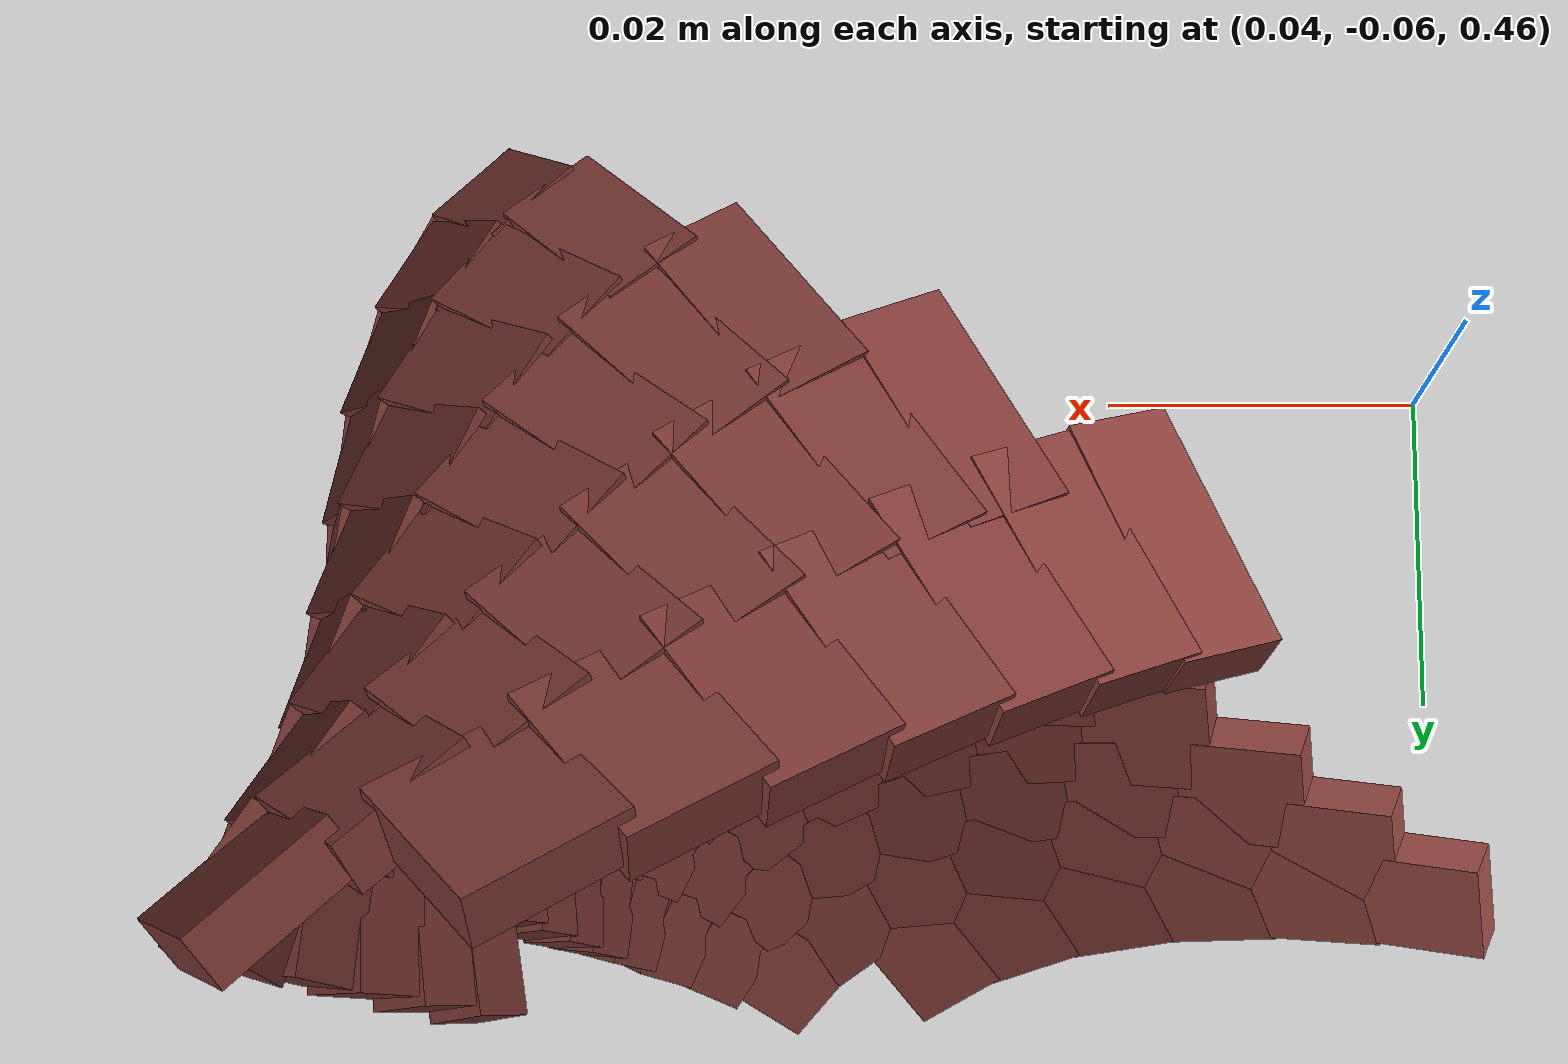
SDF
<sdf version="1.8">
 <model name="tissue">
  <static>true</static>
  <link name="t2">
   <pose>0.08698 -0.02447 0.53863 -0.6133 0.3621 -2.5926</pose>
   <visual name="v">
    <geometry><box><size>0.00718 0.00747 0.0025</size></box></geometry>
    <material>
     <ambient>0.249 0.113 0.105 1</ambient>
     <diffuse>0.452 0.205 0.191 1</diffuse>
     <specular>0.10 0.07 0.07 1</specular>
    </material>
   </visual>
  </link>
  <link name="t3">
   <pose>0.08206 -0.02740 0.53644 -0.4828 0.3674 -2.6194</pose>
   <visual name="v">
    <geometry><box><size>0.00656 0.00845 0.0025</size></box></geometry>
    <material>
     <ambient>0.259 0.119 0.110 1</ambient>
     <diffuse>0.471 0.216 0.201 1</diffuse>
     <specular>0.10 0.07 0.07 1</specular>
    </material>
   </visual>
  </link>
  <link name="t4">
   <pose>0.07749 -0.02994 0.53442 -0.3891 0.3728 -2.6481</pose>
   <visual name="v">
    <geometry><box><size>0.00601 0.00937 0.0025</size></box></geometry>
    <material>
     <ambient>0.269 0.124 0.116 1</ambient>
     <diffuse>0.489 0.226 0.210 1</diffuse>
     <specular>0.10 0.07 0.07 1</specular>
    </material>
   </visual>
  </link>
  <link name="t5">
   <pose>0.07324 -0.03214 0.53253 -0.3256 0.3789 -2.6826</pose>
   <visual name="v">
    <geometry><box><size>0.00554 0.01017 0.0025</size></box></geometry>
    <material>
     <ambient>0.278 0.129 0.120 1</ambient>
     <diffuse>0.506 0.235 0.219 1</diffuse>
     <specular>0.10 0.07 0.07 1</specular>
    </material>
   </visual>
  </link>
  <link name="t6">
   <pose>0.06923 -0.03402 0.53075 -0.2872 0.3860 -2.7264</pose>
   <visual name="v">
    <geometry><box><size>0.00515 0.01083 0.0025</size></box></geometry>
    <material>
     <ambient>0.287 0.134 0.125 1</ambient>
     <diffuse>0.521 0.244 0.227 1</diffuse>
     <specular>0.10 0.07 0.07 1</specular>
    </material>
   </visual>
  </link>
  <link name="t7">
   <pose>0.06542 -0.03558 0.52906 -0.2705 0.3940 -2.7824</pose>
   <visual name="v">
    <geometry><box><size>0.00484 0.01132 0.0025</size></box></geometry>
    <material>
     <ambient>0.295 0.139 0.129 1</ambient>
     <diffuse>0.536 0.253 0.235 1</diffuse>
     <specular>0.10 0.07 0.07 1</specular>
    </material>
   </visual>
  </link>
  <link name="t8">
   <pose>0.06175 -0.03682 0.52742 -0.2732 0.4024 -2.8518</pose>
   <visual name="v">
    <geometry><box><size>0.00460 0.01162 0.0025</size></box></geometry>
    <material>
     <ambient>0.303 0.143 0.134 1</ambient>
     <diffuse>0.551 0.261 0.243 1</diffuse>
     <specular>0.10 0.07 0.07 1</specular>
    </material>
   </visual>
  </link>
  <link name="t23">
   <pose>0.09623 -0.02202 0.53761 -1.0472 0.2717 -2.3644</pose>
   <visual name="v">
    <geometry><box><size>0.00680 0.00555 0.0025</size></box></geometry>
    <material>
     <ambient>0.229 0.101 0.094 1</ambient>
     <diffuse>0.416 0.185 0.171 1</diffuse>
     <specular>0.10 0.07 0.07 1</specular>
    </material>
   </visual>
  </link>
  <link name="t24">
   <pose>0.09217 -0.02593 0.53602 -0.7890 0.2773 -2.3865</pose>
   <visual name="v">
    <geometry><box><size>0.00633 0.00608 0.0025</size></box></geometry>
    <material>
     <ambient>0.238 0.106 0.099 1</ambient>
     <diffuse>0.432 0.193 0.180 1</diffuse>
     <specular>0.10 0.07 0.07 1</specular>
    </material>
   </visual>
  </link>
  <link name="t25">
   <pose>0.08831 -0.02948 0.53452 -0.5877 0.2830 -2.4098</pose>
   <visual name="v">
    <geometry><box><size>0.00590 0.00696 0.0025</size></box></geometry>
    <material>
     <ambient>0.246 0.111 0.103 1</ambient>
     <diffuse>0.447 0.202 0.188 1</diffuse>
     <specular>0.10 0.07 0.07 1</specular>
    </material>
   </visual>
  </link>
  <link name="t26">
   <pose>0.08463 -0.03270 0.53308 -0.4451 0.2902 -2.4402</pose>
   <visual name="v">
    <geometry><box><size>0.00552 0.00798 0.0025</size></box></geometry>
    <material>
     <ambient>0.254 0.116 0.107 1</ambient>
     <diffuse>0.461 0.210 0.195 1</diffuse>
     <specular>0.10 0.07 0.07 1</specular>
    </material>
   </visual>
  </link>
  <link name="t27">
   <pose>0.08108 -0.03558 0.53169 -0.3513 0.2999 -2.4833</pose>
   <visual name="v">
    <geometry><box><size>0.00520 0.00898 0.0025</size></box></geometry>
    <material>
     <ambient>0.261 0.120 0.112 1</ambient>
     <diffuse>0.475 0.218 0.203 1</diffuse>
     <specular>0.10 0.07 0.07 1</specular>
    </material>
   </visual>
  </link>
  <link name="t28">
   <pose>0.07759 -0.03812 0.53033 -0.2966 0.3126 -2.5442</pose>
   <visual name="v">
    <geometry><box><size>0.00495 0.00989 0.0025</size></box></geometry>
    <material>
     <ambient>0.269 0.124 0.116 1</ambient>
     <diffuse>0.489 0.226 0.210 1</diffuse>
     <specular>0.10 0.07 0.07 1</specular>
    </material>
   </visual>
  </link>
  <link name="t29">
   <pose>0.07411 -0.04030 0.52897 -0.2745 0.3278 -2.6261</pose>
   <visual name="v">
    <geometry><box><size>0.00476 0.01064 0.0025</size></box></geometry>
    <material>
     <ambient>0.276 0.128 0.119 1</ambient>
     <diffuse>0.502 0.233 0.217 1</diffuse>
     <specular>0.10 0.07 0.07 1</specular>
    </material>
   </visual>
  </link>
  <link name="t30">
   <pose>0.07057 -0.04209 0.52758 -0.2809 0.3439 -2.7295</pose>
   <visual name="v">
    <geometry><box><size>0.00465 0.01117 0.0025</size></box></geometry>
    <material>
     <ambient>0.284 0.133 0.124 1</ambient>
     <diffuse>0.516 0.241 0.225 1</diffuse>
     <specular>0.10 0.07 0.07 1</specular>
    </material>
   </visual>
  </link>
  <link name="t45">
   <pose>0.09809 -0.02245 0.53311 -1.3784 0.1748 -2.1212</pose>
   <visual name="v">
    <geometry><box><size>0.00603 0.00558 0.0025</size></box></geometry>
    <material>
     <ambient>0.225 0.099 0.092 1</ambient>
     <diffuse>0.409 0.180 0.167 1</diffuse>
     <specular>0.10 0.07 0.07 1</specular>
    </material>
   </visual>
  </link>
  <link name="t46">
   <pose>0.09537 -0.02683 0.53220 -1.0879 0.1773 -2.1305</pose>
   <visual name="v">
    <geometry><box><size>0.00572 0.00550 0.0025</size></box></geometry>
    <material>
     <ambient>0.231 0.103 0.095 1</ambient>
     <diffuse>0.420 0.186 0.173 1</diffuse>
     <specular>0.10 0.07 0.07 1</specular>
    </material>
   </visual>
  </link>
  <link name="t47">
   <pose>0.09274 -0.03096 0.53131 -0.8201 0.1818 -2.1466</pose>
   <visual name="v">
    <geometry><box><size>0.00543 0.00590 0.0025</size></box></geometry>
    <material>
     <ambient>0.236 0.106 0.098 1</ambient>
     <diffuse>0.430 0.192 0.179 1</diffuse>
     <specular>0.10 0.07 0.07 1</specular>
    </material>
   </visual>
  </link>
  <link name="t48">
   <pose>0.09016 -0.03483 0.53044 -0.6113 0.1902 -2.1775</pose>
   <visual name="v">
    <geometry><box><size>0.00518 0.00664 0.0025</size></box></geometry>
    <material>
     <ambient>0.242 0.109 0.101 1</ambient>
     <diffuse>0.440 0.198 0.184 1</diffuse>
     <specular>0.10 0.07 0.07 1</specular>
    </material>
   </visual>
  </link>
  <link name="t49">
   <pose>0.08754 -0.03842 0.52955 -0.4664 0.2042 -2.2311</pose>
   <visual name="v">
    <geometry><box><size>0.00496 0.00754 0.0025</size></box></geometry>
    <material>
     <ambient>0.248 0.112 0.104 1</ambient>
     <diffuse>0.450 0.204 0.189 1</diffuse>
     <specular>0.10 0.07 0.07 1</specular>
    </material>
   </visual>
  </link>
  <link name="t50">
   <pose>0.08481 -0.04167 0.52863 -0.3769 0.2247 -2.3144</pose>
   <visual name="v">
    <geometry><box><size>0.00479 0.00845 0.0025</size></box></geometry>
    <material>
     <ambient>0.253 0.115 0.107 1</ambient>
     <diffuse>0.461 0.210 0.195 1</diffuse>
     <specular>0.10 0.07 0.07 1</specular>
    </material>
   </visual>
  </link>
  <link name="t51">
   <pose>0.08188 -0.04453 0.52764 -0.3351 0.2507 -2.4320</pose>
   <visual name="v">
    <geometry><box><size>0.00467 0.00926 0.0025</size></box></geometry>
    <material>
     <ambient>0.260 0.119 0.111 1</ambient>
     <diffuse>0.472 0.216 0.201 1</diffuse>
     <specular>0.10 0.07 0.07 1</specular>
    </material>
   </visual>
  </link>
  <link name="t52">
   <pose>0.07867 -0.04692 0.52656 -0.3365 0.2788 -2.5831</pose>
   <visual name="v">
    <geometry><box><size>0.00464 0.00988 0.0025</size></box></geometry>
    <material>
     <ambient>0.267 0.123 0.114 1</ambient>
     <diffuse>0.485 0.223 0.208 1</diffuse>
     <specular>0.10 0.07 0.07 1</specular>
    </material>
   </visual>
  </link>
  <link name="t67">
   <pose>0.09832 -0.02250 0.52796 1.5002 0.0857 -1.8778</pose>
   <visual name="v">
    <geometry><box><size>0.00568 0.00599 0.0025</size></box></geometry>
    <material>
     <ambient>0.224 0.099 0.092 1</ambient>
     <diffuse>0.408 0.180 0.167 1</diffuse>
     <specular>0.10 0.07 0.07 1</specular>
    </material>
   </visual>
  </link>
  <link name="t68">
   <pose>0.09683 -0.02725 0.52753 -1.4136 0.0845 -1.8732</pose>
   <visual name="v">
    <geometry><box><size>0.00550 0.00560 0.0025</size></box></geometry>
    <material>
     <ambient>0.228 0.101 0.094 1</ambient>
     <diffuse>0.414 0.183 0.170 1</diffuse>
     <specular>0.10 0.07 0.07 1</specular>
    </material>
   </visual>
  </link>
  <link name="t69">
   <pose>0.09539 -0.03185 0.52712 -1.1661 0.0869 -1.8821</pose>
   <visual name="v">
    <geometry><box><size>0.00534 0.00554 0.0025</size></box></geometry>
    <material>
     <ambient>0.231 0.103 0.095 1</ambient>
     <diffuse>0.419 0.186 0.173 1</diffuse>
     <specular>0.10 0.07 0.07 1</specular>
    </material>
   </visual>
  </link>
  <link name="t70">
   <pose>0.09390 -0.03628 0.52670 -0.9328 0.0952 -1.9134</pose>
   <visual name="v">
    <geometry><box><size>0.00517 0.00581 0.0025</size></box></geometry>
    <material>
     <ambient>0.234 0.104 0.097 1</ambient>
     <diffuse>0.425 0.190 0.176 1</diffuse>
     <specular>0.10 0.07 0.07 1</specular>
    </material>
   </visual>
  </link>
  <link name="t71">
   <pose>0.09227 -0.04049 0.52624 -0.7403 0.1117 -1.9765</pose>
   <visual name="v">
    <geometry><box><size>0.00500 0.00632 0.0025</size></box></geometry>
    <material>
     <ambient>0.237 0.106 0.099 1</ambient>
     <diffuse>0.432 0.193 0.180 1</diffuse>
     <specular>0.10 0.07 0.07 1</specular>
    </material>
   </visual>
  </link>
  <link name="t72">
   <pose>0.09037 -0.04440 0.52570 -0.6000 0.1381 -2.0814</pose>
   <visual name="v">
    <geometry><box><size>0.00482 0.00694 0.0025</size></box></geometry>
    <material>
     <ambient>0.241 0.109 0.101 1</ambient>
     <diffuse>0.439 0.197 0.183 1</diffuse>
     <specular>0.10 0.07 0.07 1</specular>
    </material>
   </visual>
  </link>
  <link name="t73">
   <pose>0.08807 -0.04790 0.52504 -0.5170 0.1738 -2.2365</pose>
   <visual name="v">
    <geometry><box><size>0.00468 0.00754 0.0025</size></box></geometry>
    <material>
     <ambient>0.246 0.111 0.104 1</ambient>
     <diffuse>0.448 0.203 0.188 1</diffuse>
     <specular>0.10 0.07 0.07 1</specular>
    </material>
   </visual>
  </link>
  <link name="t74">
   <pose>0.08526 -0.05084 0.52424 -0.4964 0.2142 -2.4421</pose>
   <visual name="v">
    <geometry><box><size>0.00466 0.00799 0.0025</size></box></geometry>
    <material>
     <ambient>0.252 0.115 0.107 1</ambient>
     <diffuse>0.459 0.209 0.194 1</diffuse>
     <specular>0.10 0.07 0.07 1</specular>
    </material>
   </visual>
  </link>
  <link name="t89">
   <pose>0.09749 -0.02231 0.52253 1.3593 0.0250 -1.6792</pose>
   <visual name="v">
    <geometry><box><size>0.00563 0.00625 0.0025</size></box></geometry>
    <material>
     <ambient>0.226 0.100 0.093 1</ambient>
     <diffuse>0.411 0.182 0.169 1</diffuse>
     <specular>0.10 0.07 0.07 1</specular>
    </material>
   </visual>
  </link>
  <link name="t90">
   <pose>0.09699 -0.02729 0.52241 1.5105 0.0221 -1.6668</pose>
   <visual name="v">
    <geometry><box><size>0.00558 0.00587 0.0025</size></box></geometry>
    <material>
     <ambient>0.227 0.101 0.093 1</ambient>
     <diffuse>0.413 0.183 0.170 1</diffuse>
     <specular>0.10 0.07 0.07 1</specular>
    </material>
   </visual>
  </link>
  <link name="t91">
   <pose>0.09652 -0.03222 0.52230 -1.4639 0.0237 -1.6734</pose>
   <visual name="v">
    <geometry><box><size>0.00552 0.00565 0.0025</size></box></geometry>
    <material>
     <ambient>0.228 0.101 0.094 1</ambient>
     <diffuse>0.415 0.184 0.171 1</diffuse>
     <specular>0.10 0.07 0.07 1</specular>
    </material>
   </visual>
  </link>
  <link name="t92">
   <pose>0.09595 -0.03707 0.52217 -1.2919 0.0315 -1.7075</pose>
   <visual name="v">
    <geometry><box><size>0.00541 0.00560 0.0025</size></box></geometry>
    <material>
     <ambient>0.229 0.102 0.095 1</ambient>
     <diffuse>0.417 0.185 0.172 1</diffuse>
     <specular>0.10 0.07 0.07 1</specular>
    </material>
   </visual>
  </link>
  <link name="t93">
   <pose>0.09516 -0.04176 0.52199 -1.1270 0.0479 -1.7796</pose>
   <visual name="v">
    <geometry><box><size>0.00524 0.00571 0.0025</size></box></geometry>
    <material>
     <ambient>0.231 0.103 0.095 1</ambient>
     <diffuse>0.420 0.187 0.174 1</diffuse>
     <specular>0.10 0.07 0.07 1</specular>
    </material>
   </visual>
  </link>
  <link name="t94">
   <pose>0.09397 -0.04617 0.52172 -0.9827 0.0751 -1.9026</pose>
   <visual name="v">
    <geometry><box><size>0.00501 0.00590 0.0025</size></box></geometry>
    <material>
     <ambient>0.234 0.104 0.097 1</ambient>
     <diffuse>0.425 0.189 0.176 1</diffuse>
     <specular>0.10 0.07 0.07 1</specular>
    </material>
   </visual>
  </link>
  <link name="t95">
   <pose>0.09221 -0.05015 0.52131 -0.8775 0.1144 -2.0910</pose>
   <visual name="v">
    <geometry><box><size>0.00479 0.00609 0.0025</size></box></geometry>
    <material>
     <ambient>0.238 0.106 0.099 1</ambient>
     <diffuse>0.432 0.193 0.180 1</diffuse>
     <specular>0.10 0.07 0.07 1</specular>
    </material>
   </visual>
  </link>
  <link name="t96">
   <pose>0.08971 -0.05350 0.52073 -0.8380 0.1608 -2.3487</pose>
   <visual name="v">
    <geometry><box><size>0.00472 0.00619 0.0025</size></box></geometry>
    <material>
     <ambient>0.243 0.109 0.102 1</ambient>
     <diffuse>0.442 0.199 0.185 1</diffuse>
     <specular>0.10 0.07 0.07 1</specular>
    </material>
   </visual>
  </link>
  <link name="t111">
   <pose>0.09614 -0.02200 0.51710 1.3062 -0.0051 -1.5418</pose>
   <visual name="v">
    <geometry><box><size>0.00569 0.00626 0.0025</size></box></geometry>
    <material>
     <ambient>0.229 0.102 0.094 1</ambient>
     <diffuse>0.417 0.185 0.171 1</diffuse>
     <specular>0.10 0.07 0.07 1</specular>
    </material>
   </visual>
  </link>
  <link name="t112">
   <pose>0.09633 -0.02710 0.51713 1.4016 -0.0075 -1.5288</pose>
   <visual name="v">
    <geometry><box><size>0.00574 0.00602 0.0025</size></box></geometry>
    <material>
     <ambient>0.229 0.101 0.094 1</ambient>
     <diffuse>0.416 0.184 0.171 1</diffuse>
     <specular>0.10 0.07 0.07 1</specular>
    </material>
   </visual>
  </link>
  <link name="t113">
   <pose>0.09654 -0.03223 0.51717 1.4984 -0.0057 -1.5390</pose>
   <visual name="v">
    <geometry><box><size>0.00574 0.00585 0.0025</size></box></geometry>
    <material>
     <ambient>0.228 0.101 0.094 1</ambient>
     <diffuse>0.415 0.184 0.171 1</diffuse>
     <specular>0.10 0.07 0.07 1</specular>
    </material>
   </visual>
  </link>
  <link name="t114">
   <pose>0.09661 -0.03733 0.51718 -1.5504 0.0017 -1.5805</pose>
   <visual name="v">
    <geometry><box><size>0.00566 0.00574 0.0025</size></box></geometry>
    <material>
     <ambient>0.228 0.101 0.094 1</ambient>
     <diffuse>0.415 0.184 0.171 1</diffuse>
     <specular>0.10 0.07 0.07 1</specular>
    </material>
   </visual>
  </link>
  <link name="t115">
   <pose>0.09639 -0.04230 0.51714 -1.4667 0.0166 -1.6644</pose>
   <visual name="v">
    <geometry><box><size>0.00546 0.00567 0.0025</size></box></geometry>
    <material>
     <ambient>0.229 0.101 0.094 1</ambient>
     <diffuse>0.416 0.184 0.171 1</diffuse>
     <specular>0.10 0.07 0.07 1</specular>
    </material>
   </visual>
  </link>
  <link name="t116">
   <pose>0.09565 -0.04700 0.51701 -1.3982 0.0416 -1.8073</pose>
   <visual name="v">
    <geometry><box><size>0.00517 0.00562 0.0025</size></box></geometry>
    <material>
     <ambient>0.230 0.102 0.095 1</ambient>
     <diffuse>0.418 0.186 0.173 1</diffuse>
     <specular>0.10 0.07 0.07 1</specular>
    </material>
   </visual>
  </link>
  <link name="t117">
   <pose>0.09417 -0.05122 0.51675 -1.3575 0.0785 -2.0291</pose>
   <visual name="v">
    <geometry><box><size>0.00488 0.00554 0.0025</size></box></geometry>
    <material>
     <ambient>0.233 0.104 0.097 1</ambient>
     <diffuse>0.424 0.189 0.176 1</diffuse>
     <specular>0.10 0.07 0.07 1</specular>
    </material>
   </visual>
  </link>
  <link name="t118">
   <pose>0.09176 -0.05472 0.51632 -1.3649 0.1224 -2.3350</pose>
   <visual name="v">
    <geometry><box><size>0.00478 0.00540 0.0025</size></box></geometry>
    <material>
     <ambient>0.238 0.107 0.099 1</ambient>
     <diffuse>0.434 0.194 0.181 1</diffuse>
     <specular>0.10 0.07 0.07 1</specular>
    </material>
   </visual>
  </link>
  <link name="t133">
   <pose>0.09464 -0.02166 0.51179 1.3066 -0.0138 -1.4594</pose>
   <visual name="v">
    <geometry><box><size>0.00575 0.00608 0.0025</size></box></geometry>
    <material>
     <ambient>0.232 0.103 0.096 1</ambient>
     <diffuse>0.422 0.188 0.175 1</diffuse>
     <specular>0.10 0.07 0.07 1</specular>
    </material>
   </visual>
  </link>
  <link name="t134">
   <pose>0.09525 -0.02680 0.51187 1.3594 -0.0148 -1.4516</pose>
   <visual name="v">
    <geometry><box><size>0.00584 0.00600 0.0025</size></box></geometry>
    <material>
     <ambient>0.231 0.103 0.095 1</ambient>
     <diffuse>0.420 0.187 0.173 1</diffuse>
     <specular>0.10 0.07 0.07 1</specular>
    </material>
   </visual>
  </link>
  <link name="t135">
   <pose>0.09584 -0.03200 0.51194 1.4028 -0.0125 -1.4705</pose>
   <visual name="v">
    <geometry><box><size>0.00586 0.00594 0.0025</size></box></geometry>
    <material>
     <ambient>0.230 0.102 0.095 1</ambient>
     <diffuse>0.418 0.185 0.172 1</diffuse>
     <specular>0.10 0.07 0.07 1</specular>
    </material>
   </visual>
  </link>
  <link name="t136">
   <pose>0.09625 -0.03719 0.51199 1.4314 -0.0057 -1.5247</pose>
   <visual name="v">
    <geometry><box><size>0.00577 0.00591 0.0025</size></box></geometry>
    <material>
     <ambient>0.229 0.101 0.094 1</ambient>
     <diffuse>0.416 0.184 0.171 1</diffuse>
     <specular>0.10 0.07 0.07 1</specular>
    </material>
   </visual>
  </link>
  <link name="t137">
   <pose>0.09626 -0.04225 0.51199 1.4389 0.0070 -1.6272</pose>
   <visual name="v">
    <geometry><box><size>0.00553 0.00589 0.0025</size></box></geometry>
    <material>
     <ambient>0.229 0.101 0.094 1</ambient>
     <diffuse>0.416 0.184 0.171 1</diffuse>
     <specular>0.10 0.07 0.07 1</specular>
    </material>
   </visual>
  </link>
  <link name="t138">
   <pose>0.09563 -0.04699 0.51191 1.4185 0.0281 -1.7981</pose>
   <visual name="v">
    <geometry><box><size>0.00518 0.00587 0.0025</size></box></geometry>
    <material>
     <ambient>0.230 0.102 0.095 1</ambient>
     <diffuse>0.419 0.186 0.173 1</diffuse>
     <specular>0.10 0.07 0.07 1</specular>
    </material>
   </visual>
  </link>
  <link name="t139">
   <pose>0.09412 -0.05119 0.51172 1.3658 0.0585 -2.0603</pose>
   <visual name="v">
    <geometry><box><size>0.00486 0.00585 0.0025</size></box></geometry>
    <material>
     <ambient>0.233 0.104 0.097 1</ambient>
     <diffuse>0.424 0.189 0.176 1</diffuse>
     <specular>0.10 0.07 0.07 1</specular>
    </material>
   </visual>
  </link>
  <link name="t140">
   <pose>0.09151 -0.05457 0.51140 1.2934 0.0923 -2.4087</pose>
   <visual name="v">
    <geometry><box><size>0.00485 0.00586 0.0025</size></box></geometry>
    <material>
     <ambient>0.239 0.107 0.100 1</ambient>
     <diffuse>0.435 0.195 0.181 1</diffuse>
     <specular>0.10 0.07 0.07 1</specular>
    </material>
   </visual>
  </link>
  <link name="t155">
   <pose>0.09327 -0.02135 0.50665 1.3384 -0.0107 -1.4207</pose>
   <visual name="v">
    <geometry><box><size>0.00575 0.00585 0.0025</size></box></geometry>
    <material>
     <ambient>0.235 0.105 0.098 1</ambient>
     <diffuse>0.428 0.191 0.177 1</diffuse>
     <specular>0.10 0.07 0.07 1</specular>
    </material>
   </visual>
  </link>
  <link name="t156">
   <pose>0.09406 -0.02646 0.50671 1.3540 -0.0105 -1.4227</pose>
   <visual name="v">
    <geometry><box><size>0.00584 0.00587 0.0025</size></box></geometry>
    <material>
     <ambient>0.234 0.104 0.097 1</ambient>
     <diffuse>0.425 0.189 0.176 1</diffuse>
     <specular>0.10 0.07 0.07 1</specular>
    </material>
   </visual>
  </link>
  <link name="t157">
   <pose>0.09476 -0.03164 0.50676 1.3527 -0.0082 -1.4557</pose>
   <visual name="v">
    <geometry><box><size>0.00583 0.00592 0.0025</size></box></geometry>
    <material>
     <ambient>0.232 0.103 0.096 1</ambient>
     <diffuse>0.422 0.188 0.174 1</diffuse>
     <specular>0.10 0.07 0.07 1</specular>
    </material>
   </visual>
  </link>
  <link name="t158">
   <pose>0.09520 -0.03678 0.50679 1.3280 -0.0029 -1.5295</pose>
   <visual name="v">
    <geometry><box><size>0.00569 0.00599 0.0025</size></box></geometry>
    <material>
     <ambient>0.231 0.103 0.095 1</ambient>
     <diffuse>0.420 0.187 0.173 1</diffuse>
     <specular>0.10 0.07 0.07 1</specular>
    </material>
   </visual>
  </link>
  <link name="t159">
   <pose>0.09512 -0.04174 0.50678 1.2730 0.0064 -1.6601</pose>
   <visual name="v">
    <geometry><box><size>0.00540 0.00609 0.0025</size></box></geometry>
    <material>
     <ambient>0.231 0.103 0.095 1</ambient>
     <diffuse>0.421 0.187 0.174 1</diffuse>
     <specular>0.10 0.07 0.07 1</specular>
    </material>
   </visual>
  </link>
  <link name="t160">
   <pose>0.09427 -0.04632 0.50672 1.1852 0.0211 -1.8711</pose>
   <visual name="v">
    <geometry><box><size>0.00503 0.00624 0.0025</size></box></geometry>
    <material>
     <ambient>0.233 0.104 0.096 1</ambient>
     <diffuse>0.424 0.189 0.175 1</diffuse>
     <specular>0.10 0.07 0.07 1</specular>
    </material>
   </visual>
  </link>
  <link name="t161">
   <pose>0.09241 -0.05026 0.50659 1.0811 0.0408 -2.1798</pose>
   <visual name="v">
    <geometry><box><size>0.00480 0.00646 0.0025</size></box></geometry>
    <material>
     <ambient>0.237 0.106 0.099 1</ambient>
     <diffuse>0.431 0.193 0.179 1</diffuse>
     <specular>0.10 0.07 0.07 1</specular>
    </material>
   </visual>
  </link>
  <link name="t162">
   <pose>0.08934 -0.05328 0.50637 1.0031 0.0592 -2.5520</pose>
   <visual name="v">
    <geometry><box><size>0.00499 0.00676 0.0025</size></box></geometry>
    <material>
     <ambient>0.244 0.110 0.102 1</ambient>
     <diffuse>0.443 0.200 0.186 1</diffuse>
     <specular>0.10 0.07 0.07 1</specular>
    </material>
   </visual>
  </link>
  <link name="t178">
   <pose>0.09291 -0.02614 0.50168 1.3655 -0.0025 -1.4338</pose>
   <visual name="v">
    <geometry><box><size>0.00574 0.00571 0.0025</size></box></geometry>
    <material>
     <ambient>0.236 0.106 0.098 1</ambient>
     <diffuse>0.429 0.192 0.178 1</diffuse>
     <specular>0.10 0.07 0.07 1</specular>
    </material>
   </visual>
  </link>
  <link name="t179">
   <pose>0.09350 -0.03122 0.50169 1.3226 -0.0015 -1.4872</pose>
   <visual name="v">
    <geometry><box><size>0.00567 0.00581 0.0025</size></box></geometry>
    <material>
     <ambient>0.235 0.105 0.097 1</ambient>
     <diffuse>0.427 0.191 0.177 1</diffuse>
     <specular>0.10 0.07 0.07 1</specular>
    </material>
   </visual>
  </link>
  <link name="t180">
   <pose>0.09370 -0.03620 0.50169 1.2493 0.0003 -1.5895</pose>
   <visual name="v">
    <geometry><box><size>0.00547 0.00596 0.0025</size></box></geometry>
    <material>
     <ambient>0.234 0.105 0.097 1</ambient>
     <diffuse>0.426 0.190 0.177 1</diffuse>
     <specular>0.10 0.07 0.07 1</specular>
    </material>
   </visual>
  </link>
  <link name="t181">
   <pose>0.09326 -0.04093 0.50168 1.1422 0.0034 -1.7603</pose>
   <visual name="v">
    <geometry><box><size>0.00514 0.00619 0.0025</size></box></geometry>
    <material>
     <ambient>0.235 0.105 0.098 1</ambient>
     <diffuse>0.428 0.191 0.177 1</diffuse>
     <specular>0.10 0.07 0.07 1</specular>
    </material>
   </visual>
  </link>
  <link name="t182">
   <pose>0.09191 -0.04516 0.50166 1.0146 0.0079 -2.0211</pose>
   <visual name="v">
    <geometry><box><size>0.00484 0.00651 0.0025</size></box></geometry>
    <material>
     <ambient>0.238 0.107 0.099 1</ambient>
     <diffuse>0.433 0.194 0.180 1</diffuse>
     <specular>0.10 0.07 0.07 1</specular>
    </material>
   </visual>
  </link>
  <link name="t183">
   <pose>0.08945 -0.04865 0.50161 0.9085 0.0129 -2.3664</pose>
   <visual name="v">
    <geometry><box><size>0.00482 0.00696 0.0025</size></box></geometry>
    <material>
     <ambient>0.243 0.110 0.102 1</ambient>
     <diffuse>0.443 0.199 0.185 1</diffuse>
     <specular>0.10 0.07 0.07 1</specular>
    </material>
   </visual>
  </link>
  <link name="t184">
   <pose>0.08574 -0.05113 0.50155 0.8634 0.0165 -2.7257</pose>
   <visual name="v">
    <geometry><box><size>0.00530 0.00748 0.0025</size></box></geometry>
    <material>
     <ambient>0.251 0.114 0.106 1</ambient>
     <diffuse>0.457 0.208 0.193 1</diffuse>
     <specular>0.10 0.07 0.07 1</specular>
    </material>
   </visual>
  </link>
  <link name="t200">
   <pose>0.09189 -0.02585 0.49677 1.3772 0.0032 -1.4809</pose>
   <visual name="v">
    <geometry><box><size>0.00556 0.00556 0.0025</size></box></geometry>
    <material>
     <ambient>0.238 0.107 0.099 1</ambient>
     <diffuse>0.433 0.194 0.180 1</diffuse>
     <specular>0.10 0.07 0.07 1</specular>
    </material>
   </visual>
  </link>
  <link name="t201">
   <pose>0.09216 -0.03077 0.49676 1.2938 0.0003 -1.5629</pose>
   <visual name="v">
    <geometry><box><size>0.00543 0.00568 0.0025</size></box></geometry>
    <material>
     <ambient>0.238 0.106 0.099 1</ambient>
     <diffuse>0.432 0.193 0.180 1</diffuse>
     <specular>0.10 0.07 0.07 1</specular>
    </material>
   </visual>
  </link>
  <link name="t202">
   <pose>0.09190 -0.03551 0.49676 1.1752 -0.0047 -1.7044</pose>
   <visual name="v">
    <geometry><box><size>0.00518 0.00588 0.0025</size></box></geometry>
    <material>
     <ambient>0.238 0.107 0.099 1</ambient>
     <diffuse>0.433 0.194 0.180 1</diffuse>
     <specular>0.10 0.07 0.07 1</specular>
    </material>
   </visual>
  </link>
  <link name="t203">
   <pose>0.09086 -0.03988 0.49680 1.0302 -0.0122 -1.9251</pose>
   <visual name="v">
    <geometry><box><size>0.00489 0.00620 0.0025</size></box></geometry>
    <material>
     <ambient>0.240 0.108 0.100 1</ambient>
     <diffuse>0.437 0.196 0.182 1</diffuse>
     <specular>0.10 0.07 0.07 1</specular>
    </material>
   </visual>
  </link>
  <link name="t204">
   <pose>0.08882 -0.04364 0.49687 0.8973 -0.0216 -2.2310</pose>
   <visual name="v">
    <geometry><box><size>0.00478 0.00667 0.0025</size></box></geometry>
    <material>
     <ambient>0.245 0.110 0.103 1</ambient>
     <diffuse>0.445 0.201 0.187 1</diffuse>
     <specular>0.10 0.07 0.07 1</specular>
    </material>
   </visual>
  </link>
  <link name="t205">
   <pose>0.08560 -0.04656 0.49699 0.8241 -0.0298 -2.5788</pose>
   <visual name="v">
    <geometry><box><size>0.00506 0.00725 0.0025</size></box></geometry>
    <material>
     <ambient>0.252 0.114 0.106 1</ambient>
     <diffuse>0.458 0.208 0.193 1</diffuse>
     <specular>0.10 0.07 0.07 1</specular>
    </material>
   </visual>
  </link>
  <link name="t206">
   <pose>0.08119 -0.04842 0.49714 0.8153 -0.0341 -2.8899</pose>
   <visual name="v">
    <geometry><box><size>0.00577 0.00788 0.0025</size></box></geometry>
    <material>
     <ambient>0.261 0.120 0.111 1</ambient>
     <diffuse>0.475 0.218 0.203 1</diffuse>
     <specular>0.10 0.07 0.07 1</specular>
    </material>
   </visual>
  </link>
  <link name="t222">
   <pose>0.09093 -0.02558 0.49196 1.3714 0.0007 -1.5632</pose>
   <visual name="v">
    <geometry><box><size>0.00536 0.00544 0.0025</size></box></geometry>
    <material>
     <ambient>0.240 0.108 0.100 1</ambient>
     <diffuse>0.437 0.196 0.182 1</diffuse>
     <specular>0.10 0.07 0.07 1</specular>
    </material>
   </visual>
  </link>
  <link name="t223">
   <pose>0.09072 -0.03029 0.49197 1.2493 -0.0099 -1.6830</pose>
   <visual name="v">
    <geometry><box><size>0.00517 0.00556 0.0025</size></box></geometry>
    <material>
     <ambient>0.241 0.108 0.101 1</ambient>
     <diffuse>0.438 0.197 0.183 1</diffuse>
     <specular>0.10 0.07 0.07 1</specular>
    </material>
   </visual>
  </link>
  <link name="t224">
   <pose>0.08984 -0.03471 0.49205 1.0943 -0.0263 -1.8727</pose>
   <visual name="v">
    <geometry><box><size>0.00493 0.00578 0.0025</size></box></geometry>
    <material>
     <ambient>0.243 0.109 0.102 1</ambient>
     <diffuse>0.441 0.199 0.185 1</diffuse>
     <specular>0.10 0.07 0.07 1</specular>
    </material>
   </visual>
  </link>
  <link name="t225">
   <pose>0.08805 -0.03864 0.49221 0.9385 -0.0477 -2.1410</pose>
   <visual name="v">
    <geometry><box><size>0.00480 0.00617 0.0025</size></box></geometry>
    <material>
     <ambient>0.246 0.111 0.104 1</ambient>
     <diffuse>0.448 0.203 0.188 1</diffuse>
     <specular>0.10 0.07 0.07 1</specular>
    </material>
   </visual>
  </link>
  <link name="t226">
   <pose>0.08518 -0.04186 0.49246 0.8348 -0.0687 -2.4628</pose>
   <visual name="v">
    <geometry><box><size>0.00496 0.00673 0.0025</size></box></geometry>
    <material>
     <ambient>0.253 0.115 0.107 1</ambient>
     <diffuse>0.459 0.209 0.194 1</diffuse>
     <specular>0.10 0.07 0.07 1</specular>
    </material>
   </visual>
  </link>
  <link name="t227">
   <pose>0.08117 -0.04414 0.49282 0.8023 -0.0824 -2.7734</pose>
   <visual name="v">
    <geometry><box><size>0.00551 0.00738 0.0025</size></box></geometry>
    <material>
     <ambient>0.261 0.120 0.111 1</ambient>
     <diffuse>0.475 0.218 0.203 1</diffuse>
     <specular>0.10 0.07 0.07 1</specular>
    </material>
   </visual>
  </link>
  <link name="t228">
   <pose>0.07606 -0.04536 0.49327 0.8155 -0.0876 -3.0236</pose>
   <visual name="v">
    <geometry><box><size>0.00632 0.00799 0.0025</size></box></geometry>
    <material>
     <ambient>0.272 0.126 0.117 1</ambient>
     <diffuse>0.495 0.229 0.213 1</diffuse>
     <specular>0.10 0.07 0.07 1</specular>
    </material>
   </visual>
  </link>
  <link name="t244">
   <pose>0.08992 -0.02530 0.48726 1.3284 -0.0154 -1.6799</pose>
   <visual name="v">
    <geometry><box><size>0.00516 0.00534 0.0025</size></box></geometry>
    <material>
     <ambient>0.242 0.109 0.101 1</ambient>
     <diffuse>0.441 0.198 0.184 1</diffuse>
     <specular>0.10 0.07 0.07 1</specular>
    </material>
   </visual>
  </link>
  <link name="t245">
   <pose>0.08909 -0.02974 0.48737 1.1747 -0.0384 -1.8452</pose>
   <visual name="v">
    <geometry><box><size>0.00497 0.00545 0.0025</size></box></geometry>
    <material>
     <ambient>0.244 0.110 0.102 1</ambient>
     <diffuse>0.444 0.200 0.186 1</diffuse>
     <specular>0.10 0.07 0.07 1</specular>
    </material>
   </visual>
  </link>
  <link name="t246">
   <pose>0.08746 -0.03379 0.48761 1.0062 -0.0692 -2.0816</pose>
   <visual name="v">
    <geometry><box><size>0.00485 0.00571 0.0025</size></box></geometry>
    <material>
     <ambient>0.248 0.112 0.104 1</ambient>
     <diffuse>0.450 0.204 0.190 1</diffuse>
     <specular>0.10 0.07 0.07 1</specular>
    </material>
   </visual>
  </link>
  <link name="t247">
   <pose>0.08483 -0.03723 0.48798 0.8757 -0.1016 -2.3741</pose>
   <visual name="v">
    <geometry><box><size>0.00496 0.00616 0.0025</size></box></geometry>
    <material>
     <ambient>0.253 0.115 0.107 1</ambient>
     <diffuse>0.461 0.210 0.195 1</diffuse>
     <specular>0.10 0.07 0.07 1</specular>
    </material>
   </visual>
  </link>
  <link name="t248">
   <pose>0.08111 -0.03986 0.48850 0.8166 -0.1258 -2.6729</pose>
   <visual name="v">
    <geometry><box><size>0.00539 0.00676 0.0025</size></box></geometry>
    <material>
     <ambient>0.261 0.120 0.111 1</ambient>
     <diffuse>0.475 0.218 0.203 1</diffuse>
     <specular>0.10 0.07 0.07 1</specular>
    </material>
   </visual>
  </link>
  <link name="t249">
   <pose>0.07633 -0.04151 0.48918 0.8131 -0.1376 -2.9281</pose>
   <visual name="v">
    <geometry><box><size>0.00609 0.00738 0.0025</size></box></geometry>
    <material>
     <ambient>0.272 0.126 0.117 1</ambient>
     <diffuse>0.494 0.228 0.213 1</diffuse>
     <specular>0.10 0.07 0.07 1</specular>
    </material>
   </visual>
  </link>
  <link name="t250">
   <pose>0.07065 -0.04213 0.48999 0.8348 -0.1408 -3.1245</pose>
   <visual name="v">
    <geometry><box><size>0.00683 0.00790 0.0025</size></box></geometry>
    <material>
     <ambient>0.284 0.133 0.123 1</ambient>
     <diffuse>0.516 0.241 0.224 1</diffuse>
     <specular>0.10 0.07 0.07 1</specular>
    </material>
   </visual>
  </link>
  <link name="t266">
   <pose>0.08864 -0.02494 0.48272 1.2296 -0.0493 -1.8268</pose>
   <visual name="v">
    <geometry><box><size>0.00502 0.00526 0.0025</size></box></geometry>
    <material>
     <ambient>0.245 0.111 0.103 1</ambient>
     <diffuse>0.446 0.201 0.187 1</diffuse>
     <specular>0.10 0.07 0.07 1</specular>
    </material>
   </visual>
  </link>
  <link name="t267">
   <pose>0.08711 -0.02908 0.48302 1.0647 -0.0874 -2.0370</pose>
   <visual name="v">
    <geometry><box><size>0.00492 0.00539 0.0025</size></box></geometry>
    <material>
     <ambient>0.248 0.113 0.105 1</ambient>
     <diffuse>0.452 0.205 0.190 1</diffuse>
     <specular>0.10 0.07 0.07 1</specular>
    </material>
   </visual>
  </link>
  <link name="t268">
   <pose>0.08466 -0.03271 0.48349 0.9203 -0.1295 -2.3022</pose>
   <visual name="v">
    <geometry><box><size>0.00500 0.00571 0.0025</size></box></geometry>
    <material>
     <ambient>0.254 0.116 0.107 1</ambient>
     <diffuse>0.461 0.210 0.195 1</diffuse>
     <specular>0.10 0.07 0.07 1</specular>
    </material>
   </visual>
  </link>
  <link name="t269">
   <pose>0.08118 -0.03563 0.48417 0.8396 -0.1640 -2.5847</pose>
   <visual name="v">
    <geometry><box><size>0.00536 0.00621 0.0025</size></box></geometry>
    <material>
     <ambient>0.261 0.120 0.111 1</ambient>
     <diffuse>0.475 0.218 0.203 1</diffuse>
     <specular>0.10 0.07 0.07 1</specular>
    </material>
   </visual>
  </link>
  <link name="t270">
   <pose>0.07666 -0.03767 0.48505 0.8196 -0.1840 -2.8386</pose>
   <visual name="v">
    <geometry><box><size>0.00597 0.00679 0.0025</size></box></geometry>
    <material>
     <ambient>0.271 0.125 0.117 1</ambient>
     <diffuse>0.492 0.228 0.212 1</diffuse>
     <specular>0.10 0.07 0.07 1</specular>
    </material>
   </visual>
  </link>
  <link name="t271">
   <pose>0.07123 -0.03874 0.48611 0.8322 -0.1916 -3.0421</pose>
   <visual name="v">
    <geometry><box><size>0.00665 0.00733 0.0025</size></box></geometry>
    <material>
     <ambient>0.282 0.132 0.123 1</ambient>
     <diffuse>0.514 0.240 0.223 1</diffuse>
     <specular>0.10 0.07 0.07 1</specular>
    </material>
   </visual>
  </link>
  <link name="t272">
   <pose>0.06512 -0.03884 0.48730 0.8565 -0.1923 3.0851</pose>
   <visual name="v">
    <geometry><box><size>0.00723 0.00769 0.0025</size></box></geometry>
    <material>
     <ambient>0.296 0.139 0.130 1</ambient>
     <diffuse>0.537 0.253 0.236 1</diffuse>
     <specular>0.10 0.07 0.07 1</specular>
    </material>
   </visual>
  </link>
  <link name="t288">
   <pose>0.08682 -0.02443 0.47845 1.0679 -0.1011 -1.9920</pose>
   <visual name="v">
    <geometry><box><size>0.00499 0.00523 0.0025</size></box></geometry>
    <material>
     <ambient>0.249 0.113 0.105 1</ambient>
     <diffuse>0.453 0.205 0.191 1</diffuse>
     <specular>0.10 0.07 0.07 1</specular>
    </material>
   </visual>
  </link>
  <link name="t289">
   <pose>0.08456 -0.02823 0.47901 0.9308 -0.1517 -2.2341</pose>
   <visual name="v">
    <geometry><box><size>0.00506 0.00545 0.0025</size></box></geometry>
    <material>
     <ambient>0.254 0.116 0.108 1</ambient>
     <diffuse>0.462 0.210 0.196 1</diffuse>
     <specular>0.10 0.07 0.07 1</specular>
    </material>
   </visual>
  </link>
  <link name="t290">
   <pose>0.08131 -0.03141 0.47982 0.8440 -0.1964 -2.5008</pose>
   <visual name="v">
    <geometry><box><size>0.00536 0.00584 0.0025</size></box></geometry>
    <material>
     <ambient>0.261 0.120 0.111 1</ambient>
     <diffuse>0.474 0.217 0.202 1</diffuse>
     <specular>0.10 0.07 0.07 1</specular>
    </material>
   </visual>
  </link>
  <link name="t291">
   <pose>0.07704 -0.03381 0.48088 0.8158 -0.2257 -2.7512</pose>
   <visual name="v">
    <geometry><box><size>0.00590 0.00635 0.0025</size></box></geometry>
    <material>
     <ambient>0.270 0.125 0.116 1</ambient>
     <diffuse>0.491 0.227 0.211 1</diffuse>
     <specular>0.10 0.07 0.07 1</specular>
    </material>
   </visual>
  </link>
  <link name="t292">
   <pose>0.07185 -0.03530 0.48216 0.8238 -0.2395 -2.9597</pose>
   <visual name="v">
    <geometry><box><size>0.00654 0.00686 0.0025</size></box></geometry>
    <material>
     <ambient>0.281 0.131 0.122 1</ambient>
     <diffuse>0.511 0.238 0.222 1</diffuse>
     <specular>0.10 0.07 0.07 1</specular>
    </material>
   </visual>
  </link>
  <link name="t293">
   <pose>0.06595 -0.03587 0.48363 0.8465 -0.2433 -3.1235</pose>
   <visual name="v">
    <geometry><box><size>0.00710 0.00724 0.0025</size></box></geometry>
    <material>
     <ambient>0.294 0.138 0.129 1</ambient>
     <diffuse>0.534 0.251 0.234 1</diffuse>
     <specular>0.10 0.07 0.07 1</specular>
    </material>
   </visual>
  </link>
  <link name="t294">
   <pose>0.05962 -0.03555 0.48520 0.8725 -0.2419 3.0325</pose>
   <visual name="v">
    <geometry><box><size>0.00746 0.00742 0.0025</size></box></geometry>
    <material>
     <ambient>0.307 0.146 0.136 1</ambient>
     <diffuse>0.559 0.265 0.247 1</diffuse>
     <specular>0.10 0.07 0.07 1</specular>
    </material>
   </visual>
  </link>
  <link name="t310">
   <pose>0.08419 -0.02369 0.47462 0.8644 -0.1651 -2.1561</pose>
   <visual name="v">
    <geometry><box><size>0.00507 0.00539 0.0025</size></box></geometry>
    <material>
     <ambient>0.255 0.116 0.108 1</ambient>
     <diffuse>0.463 0.211 0.196 1</diffuse>
     <specular>0.10 0.07 0.07 1</specular>
    </material>
   </visual>
  </link>
  <link name="t311">
   <pose>0.08123 -0.02712 0.47551 0.7953 -0.2207 -2.4102</pose>
   <visual name="v">
    <geometry><box><size>0.00533 0.00571 0.0025</size></box></geometry>
    <material>
     <ambient>0.261 0.120 0.111 1</ambient>
     <diffuse>0.475 0.218 0.202 1</diffuse>
     <specular>0.10 0.07 0.07 1</specular>
    </material>
   </visual>
  </link>
  <link name="t312">
   <pose>0.07727 -0.02986 0.47670 0.7762 -0.2609 -2.6584</pose>
   <visual name="v">
    <geometry><box><size>0.00582 0.00614 0.0025</size></box></geometry>
    <material>
     <ambient>0.270 0.124 0.116 1</ambient>
     <diffuse>0.490 0.226 0.211 1</diffuse>
     <specular>0.10 0.07 0.07 1</specular>
    </material>
   </visual>
  </link>
  <link name="t313">
   <pose>0.07237 -0.03176 0.47818 0.7911 -0.2829 -2.8726</pose>
   <visual name="v">
    <geometry><box><size>0.00642 0.00659 0.0025</size></box></geometry>
    <material>
     <ambient>0.280 0.130 0.121 1</ambient>
     <diffuse>0.509 0.237 0.221 1</diffuse>
     <specular>0.10 0.07 0.07 1</specular>
    </material>
   </visual>
  </link>
  <link name="t314">
   <pose>0.06671 -0.03278 0.47989 0.8197 -0.2915 -3.0448</pose>
   <visual name="v">
    <geometry><box><size>0.00699 0.00695 0.0025</size></box></geometry>
    <material>
     <ambient>0.292 0.137 0.128 1</ambient>
     <diffuse>0.531 0.250 0.233 1</diffuse>
     <specular>0.10 0.07 0.07 1</specular>
    </material>
   </visual>
  </link>
  <link name="t315">
   <pose>0.06055 -0.03293 0.48174 0.8507 -0.2926 3.1029</pose>
   <visual name="v">
    <geometry><box><size>0.00736 0.00714 0.0025</size></box></geometry>
    <material>
     <ambient>0.305 0.145 0.135 1</ambient>
     <diffuse>0.555 0.263 0.245 1</diffuse>
     <specular>0.10 0.07 0.07 1</specular>
    </material>
   </visual>
  </link>
  <link name="t316">
   <pose>0.05420 -0.03233 0.48366 0.8797 -0.2899 2.9954</pose>
   <visual name="v">
    <geometry><box><size>0.00749 0.00711 0.0025</size></box></geometry>
    <material>
     <ambient>0.319 0.153 0.142 1</ambient>
     <diffuse>0.580 0.277 0.259 1</diffuse>
     <specular>0.10 0.07 0.07 1</specular>
    </material>
   </visual>
  </link>
  <link name="t332">
   <pose>0.08048 -0.02265 0.47145 0.6627 -0.2321 -2.2999</pose>
   <visual name="v">
    <geometry><box><size>0.00520 0.00588 0.0025</size></box></geometry>
    <material>
     <ambient>0.263 0.121 0.112 1</ambient>
     <diffuse>0.478 0.219 0.204 1</diffuse>
     <specular>0.10 0.07 0.07 1</specular>
    </material>
   </visual>
  </link>
  <link name="t333">
   <pose>0.07697 -0.02570 0.47269 0.6736 -0.2863 -2.5496</pose>
   <visual name="v">
    <geometry><box><size>0.00564 0.00623 0.0025</size></box></geometry>
    <material>
     <ambient>0.270 0.125 0.116 1</ambient>
     <diffuse>0.491 0.227 0.211 1</diffuse>
     <specular>0.10 0.07 0.07 1</specular>
    </material>
   </visual>
  </link>
  <link name="t334">
   <pose>0.07249 -0.02801 0.47428 0.7121 -0.3196 -2.7729</pose>
   <visual name="v">
    <geometry><box><size>0.00622 0.00660 0.0025</size></box></geometry>
    <material>
     <ambient>0.280 0.130 0.121 1</ambient>
     <diffuse>0.509 0.237 0.221 1</diffuse>
     <specular>0.10 0.07 0.07 1</specular>
    </material>
   </visual>
  </link>
  <link name="t335">
   <pose>0.06718 -0.02948 0.47617 0.7594 -0.3355 -2.9567</pose>
   <visual name="v">
    <geometry><box><size>0.00679 0.00689 0.0025</size></box></geometry>
    <material>
     <ambient>0.291 0.137 0.127 1</ambient>
     <diffuse>0.529 0.249 0.232 1</diffuse>
     <specular>0.10 0.07 0.07 1</specular>
    </material>
   </visual>
  </link>
  <link name="t336">
   <pose>0.06130 -0.03012 0.47825 0.8047 -0.3407 -3.1028</pose>
   <visual name="v">
    <geometry><box><size>0.00721 0.00704 0.0025</size></box></geometry>
    <material>
     <ambient>0.304 0.144 0.134 1</ambient>
     <diffuse>0.552 0.262 0.244 1</diffuse>
     <specular>0.10 0.07 0.07 1</specular>
    </material>
   </visual>
  </link>
  <link name="t337">
   <pose>0.05513 -0.02998 0.48044 0.8441 -0.3400 3.0642</pose>
   <visual name="v">
    <geometry><box><size>0.00740 0.00700 0.0025</size></box></geometry>
    <material>
     <ambient>0.317 0.151 0.141 1</ambient>
     <diffuse>0.576 0.275 0.257 1</diffuse>
     <specular>0.10 0.07 0.07 1</specular>
    </material>
   </visual>
  </link>
  <link name="t338">
   <pose>0.04895 -0.02919 0.48263 0.8775 -0.3363 2.9702</pose>
   <visual name="v">
    <geometry><box><size>0.00732 0.00677 0.0025</size></box></geometry>
    <material>
     <ambient>0.330 0.159 0.148 1</ambient>
     <diffuse>0.600 0.289 0.270 1</diffuse>
     <specular>0.10 0.07 0.07 1</specular>
    </material>
   </visual>
  </link>
  <link name="t355">
   <pose>0.07172 -0.02395 0.47074 0.5685 -0.3452 -2.6495</pose>
   <visual name="v">
    <geometry><box><size>0.00584 0.00694 0.0025</size></box></geometry>
    <material>
     <ambient>0.281 0.131 0.122 1</ambient>
     <diffuse>0.512 0.239 0.222 1</diffuse>
     <specular>0.10 0.07 0.07 1</specular>
    </material>
   </visual>
  </link>
  <link name="t356">
   <pose>0.06698 -0.02588 0.47267 0.6483 -0.3726 -2.8507</pose>
   <visual name="v">
    <geometry><box><size>0.00643 0.00712 0.0025</size></box></geometry>
    <material>
     <ambient>0.292 0.137 0.128 1</ambient>
     <diffuse>0.530 0.249 0.232 1</diffuse>
     <specular>0.10 0.07 0.07 1</specular>
    </material>
   </visual>
  </link>
  <link name="t357">
   <pose>0.06154 -0.02701 0.47489 0.7198 -0.3845 -3.0122</pose>
   <visual name="v">
    <geometry><box><size>0.00691 0.00718 0.0025</size></box></geometry>
    <material>
     <ambient>0.303 0.144 0.134 1</ambient>
     <diffuse>0.551 0.261 0.243 1</diffuse>
     <specular>0.10 0.07 0.07 1</specular>
    </material>
   </visual>
  </link>
  <link name="t358">
   <pose>0.05570 -0.02737 0.47727 0.7792 -0.3874 -3.1406</pose>
   <visual name="v">
    <geometry><box><size>0.00718 0.00708 0.0025</size></box></geometry>
    <material>
     <ambient>0.316 0.151 0.141 1</ambient>
     <diffuse>0.574 0.274 0.256 1</diffuse>
     <specular>0.10 0.07 0.07 1</specular>
    </material>
   </visual>
  </link>
  <link name="t359">
   <pose>0.04974 -0.02705 0.47971 0.8274 -0.3856 3.0392</pose>
   <visual name="v">
    <geometry><box><size>0.00720 0.00682 0.0025</size></box></geometry>
    <material>
     <ambient>0.329 0.158 0.147 1</ambient>
     <diffuse>0.597 0.287 0.268 1</diffuse>
     <specular>0.10 0.07 0.07 1</specular>
    </material>
   </visual>
  </link>
  <link name="t360">
   <pose>0.04392 -0.02619 0.48208 0.8665 -0.3813 2.9543</pose>
   <visual name="v">
    <geometry><box><size>0.00697 0.00642 0.0025</size></box></geometry>
    <material>
     <ambient>0.341 0.165 0.154 1</ambient>
     <diffuse>0.620 0.300 0.280 1</diffuse>
     <specular>0.10 0.07 0.07 1</specular>
    </material>
   </visual>
  </link>
 </model>
</sdf>
